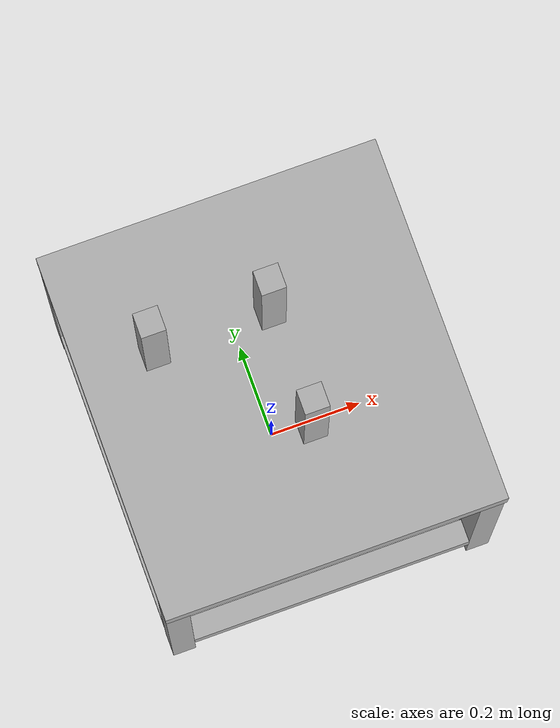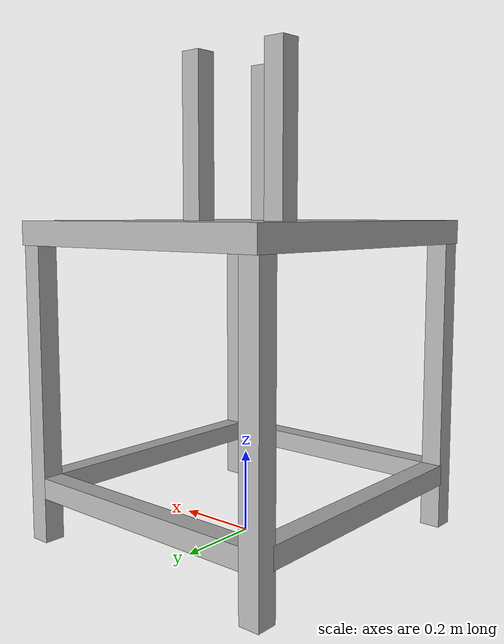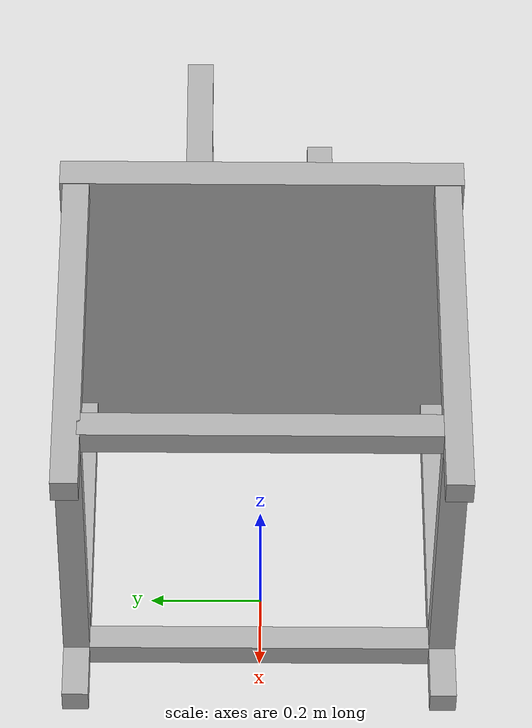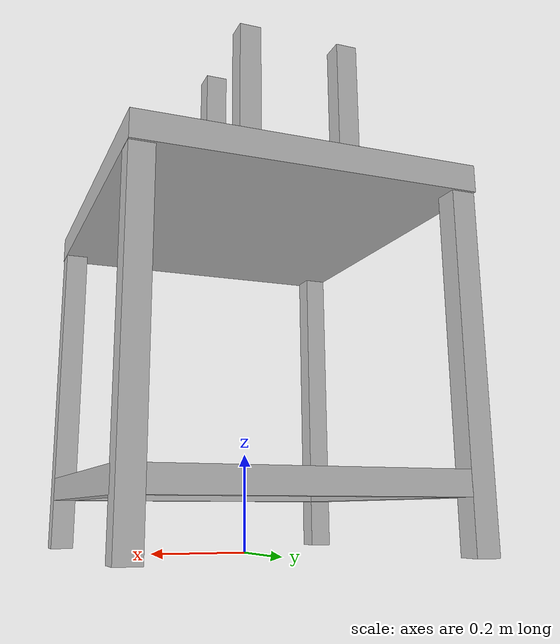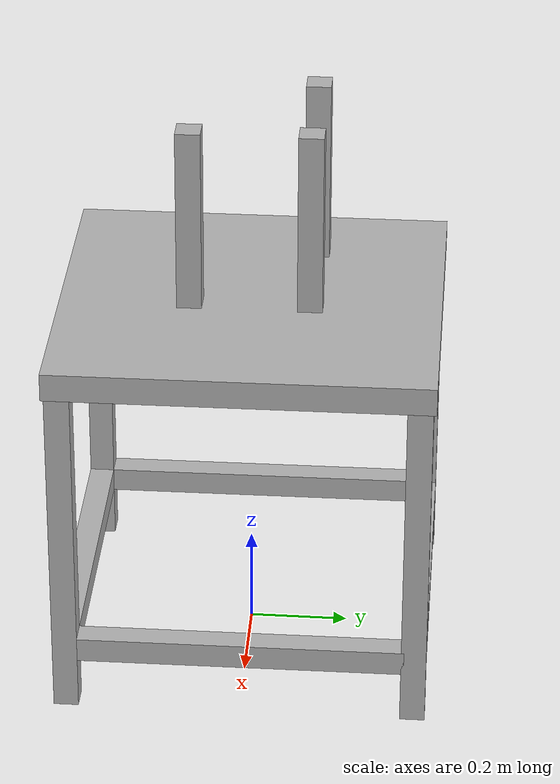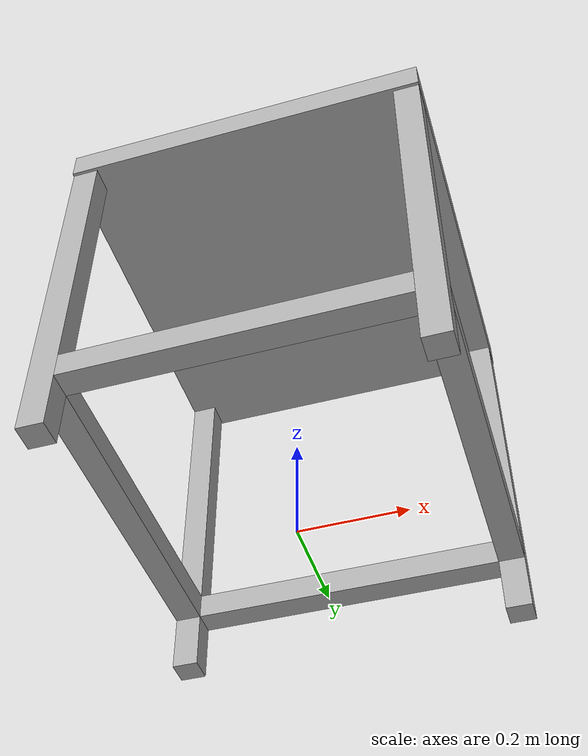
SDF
<?xml version="1.0"?>
<sdf version="1.7">
  <model name="extra_heavy_duty_table_surface_only_collision">
    <link name="table">
      <inertial>
        <mass>53.5</mass>
        <inertia>
          <ixx>5.177409</ixx>
          <ixy>0</ixy>
          <ixz>0</ixz>
          <iyy>4.843753753</iyy>
          <iyz>0</iyz>
          <izz>4.843753753</izz>
        </inertia>
      </inertial>
      <kinematic>0</kinematic>
      <visual name="back_right_leg">
        <pose>-0.33 -0.35 0.381 0 0 0</pose>
        <geometry>
          <box>
            <size>0.05 0.05 0.762</size>
          </box>
        </geometry>
        <material>
          <ambient>0.3 0.3 0.3 1</ambient>
          <diffuse>0.7 0.7 0.7 1</diffuse>
          <specular>0.01 0.01 0.01 1</specular>
          <emissive>0 0 0 1</emissive>
        </material>
      </visual>
      <visual name="front_left_leg">
        <pose>0.33 0.35 0.381 0 0 0</pose>
        <geometry>
          <box>
            <size>0.05 0.05 0.762</size>
          </box>
        </geometry>
        <material>
          <ambient>0.3 0.3 0.3 1</ambient>
          <diffuse>0.7 0.7 0.7 1</diffuse>
          <specular>0.01 0.01 0.01 1</specular>
          <emissive>0 0 0 1</emissive>
        </material>
      </visual>
      <visual name="left_crossbar">
        <pose>0.33 0 0.13335 0 0 0</pose>
        <geometry>
          <box>
            <size>0.05 0.662 0.05</size>
          </box>
        </geometry>
        <material>
          <ambient>0.3 0.3 0.3 1</ambient>
          <diffuse>0.7 0.7 0.7 1</diffuse>
          <specular>0.01 0.01 0.01 1</specular>
          <emissive>0 0 0 1</emissive>
        </material>
      </visual>
      <visual name="right_crossbar">
        <pose>-0.33 0 0.13335 0 0 0</pose>
        <geometry>
          <box>
            <size>0.05 0.662 0.05</size>
          </box>
        </geometry>
        <material>
          <ambient>0.3 0.3 0.3 1</ambient>
          <diffuse>0.7 0.7 0.7 1</diffuse>
          <specular>0.01 0.01 0.01 1</specular>
          <emissive>0 0 0 1</emissive>
        </material>
      </visual>
      <visual name="back_left_leg">
        <pose>-0.33 0.35 0.381 0 0 0</pose>
        <geometry>
          <box>
            <size>0.05 0.05 0.762</size>
          </box>
        </geometry>
        <material>
          <ambient>0.3 0.3 0.3 1</ambient>
          <diffuse>0.7 0.7 0.7 1</diffuse>
          <specular>0.01 0.01 0.01 1</specular>
          <emissive>0 0 0 1</emissive>
        </material>
      </visual>
      <visual name="front_right_leg">
        <pose>0.33 -0.35 0.381 0 0 0</pose>
        <geometry>
          <box>
            <size>0.05 0.05 0.762</size>
          </box>
        </geometry>
        <material>
          <ambient>0.3 0.3 0.3 1</ambient>
          <diffuse>0.7 0.7 0.7 1</diffuse>
          <specular>0.01 0.01 0.01 1</specular>
          <emissive>0 0 0 1</emissive>
        </material>
      </visual>
      <visual name="back_crossbar">
        <pose>0 0.35 0.13335 0 0 0</pose>
        <geometry>
          <box>
            <size>0.6112 0.05 0.05</size>
          </box>
        </geometry>
        <material>
          <ambient>0.3 0.3 0.3 1</ambient>
          <diffuse>0.7 0.7 0.7 1</diffuse>
          <specular>0.01 0.01 0.01 1</specular>
          <emissive>0 0 0 1</emissive>
        </material>
      </visual>
      <visual name="front_crossbar">
        <pose>0 -0.35 0.13335 0 0 0</pose>
        <geometry>
          <box>
            <size>0.6112 0.05 0.05</size>
          </box>
        </geometry>
        <material>
          <ambient>0.3 0.3 0.3 1</ambient>
          <diffuse>0.7 0.7 0.7 1</diffuse>
          <specular>0.01 0.01 0.01 1</specular>
          <emissive>0 0 0 1</emissive>
        </material>
      </visual>
      <visual name="visual1">
        <pose>0 0 0.736 0 0 0</pose>
        <geometry>
          <box>
            <size>0.7112 0.762 0.057</size>
          </box>
        </geometry>
        <material>
          <ambient>0.3 0.3 0.3 1</ambient>
          <diffuse>0.7 0.7 0.7 1</diffuse>
          <specular>0.01 0.01 0.01 1</specular>
          <emissive>0 0 0 1</emissive>
        </material>
      </visual>
      <visual name="front_left_support">
        <pose>0.04 0.12 0.9525 0 0 0</pose>
        <geometry>
          <box>
            <size>0.05 0.05 0.381</size>
          </box>
        </geometry>
        <material>
          <ambient>0.3 0.3 0.3 1</ambient>
          <diffuse>0.7 0.7 0.7 1</diffuse>
          <specular>0.01 0.01 0.01 1</specular>
          <emissive>0 0 0 1</emissive>
        </material>
      </visual>
      <visual name="front_right_support">
        <pose>0.04 -0.12 0.9525 0 0 0</pose>
        <geometry>
          <box>
            <size>0.05 0.05 0.381</size>
          </box>
        </geometry>
        <material>
          <ambient>0.3 0.3 0.3 1</ambient>
          <diffuse>0.7 0.7 0.7 1</diffuse>
          <specular>0.01 0.01 0.01 1</specular>
          <emissive>0 0 0 1</emissive>
        </material>
      </visual>
      <visual name="back_left_support">
        <pose>-0.20 0.12 0.9525 0 0 0</pose>
        <geometry>
          <box>
            <size>0.05 0.05 0.381</size>
          </box>
        </geometry>
        <material>
          <ambient>0.3 0.3 0.3 1</ambient>
          <diffuse>0.7 0.7 0.7 1</diffuse>
          <specular>0.01 0.01 0.01 1</specular>
          <emissive>0 0 0 1</emissive>
        </material>
      </visual>
      <collision name="front_left_support">
        <geometry>
          <sphere>
            <radius>0.001</radius>
          </sphere>
        </geometry>
        <pose>0.04 0.12 1.143 0 0 0</pose>
      </collision>
      <collision name="front_right_support">
        <geometry>
          <sphere>
            <radius>0.001</radius>
          </sphere>
        </geometry>
        <pose>0.04 -0.12 1.143 0 0 0</pose>
      </collision>
      <collision name="back_left_support">
        <geometry>
          <sphere>
            <radius>0.001</radius>
          </sphere>
        </geometry>
        <pose>-0.20 0.12 1.143 0 0 0</pose>
      </collision>
      <collision name="surface">
        <laser_retro>0</laser_retro>
        <pose>0 0 0.736 0 0 0</pose>
        <geometry>
          <box>
            <size>0.7112 0.762 0.057</size>
          </box>
        </geometry>
        <surface>
          <friction>
            <ode>
              <mu>0.6</mu>
              <mu2>0.6</mu2>
              <fdir1>0 0 0</fdir1>
              <slip1>0</slip1>
              <slip2>0</slip2>
            </ode>
            <torsional>
              <coefficient>1</coefficient>
              <patch_radius>0</patch_radius>
              <surface_radius>0</surface_radius>
              <use_patch_radius>1</use_patch_radius>
              <ode>
                <slip>0</slip>
              </ode>
            </torsional>
          </friction>
          <bounce>
            <restitution_coefficient>0</restitution_coefficient>
            <threshold>1e+06</threshold>
          </bounce>
          <contact>
            <collide_without_contact>0</collide_without_contact>
            <collide_without_contact_bitmask>1</collide_without_contact_bitmask>
            <collide_bitmask>1</collide_bitmask>
            <ode>
              <soft_cfm>0</soft_cfm>
              <soft_erp>0.2</soft_erp>
              <kp>1e+13</kp>
              <kd>1</kd>
              <max_vel>0.01</max_vel>
              <min_depth>0</min_depth>
            </ode>
            <bullet>
              <split_impulse>1</split_impulse>
              <split_impulse_penetration_threshold>-0.01
              </split_impulse_penetration_threshold>
              <soft_cfm>0</soft_cfm>
              <soft_erp>0.2</soft_erp>
              <kp>1e+13</kp>
              <kd>1</kd>
            </bullet>
          </contact>
        </surface>
      </collision>
    </link>
  </model>
</sdf>
